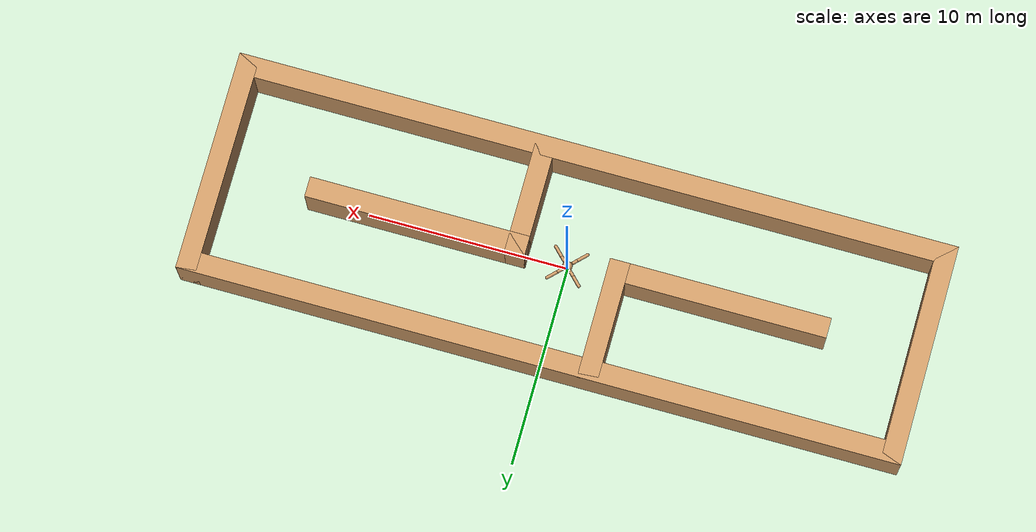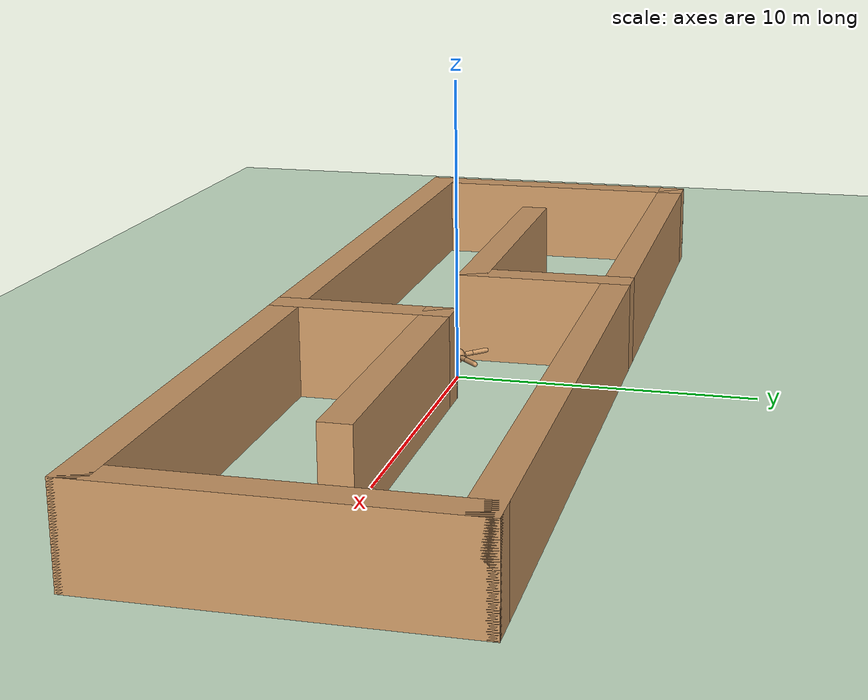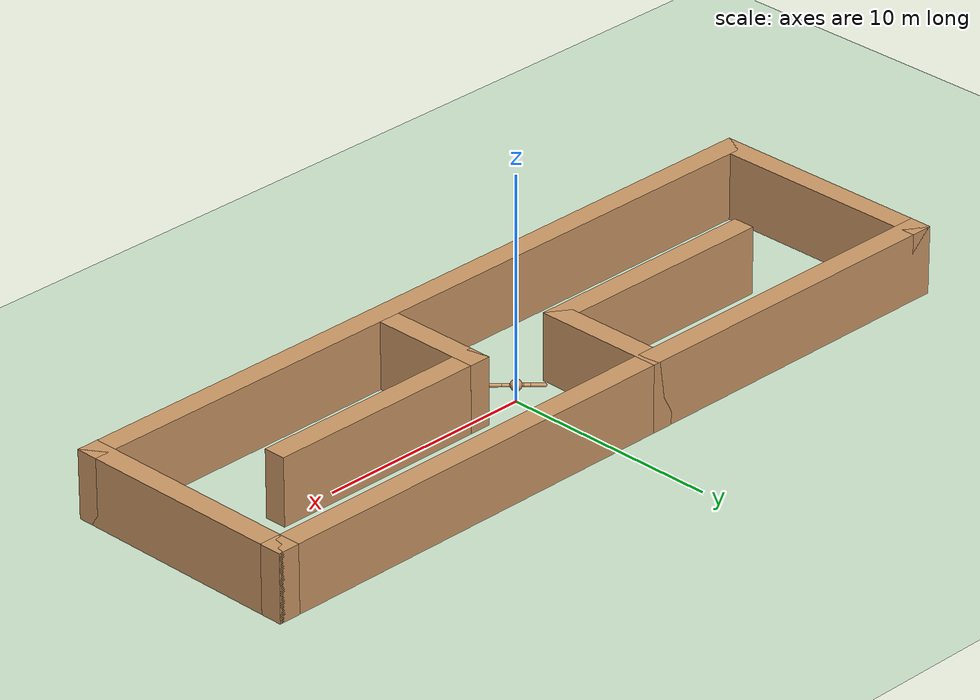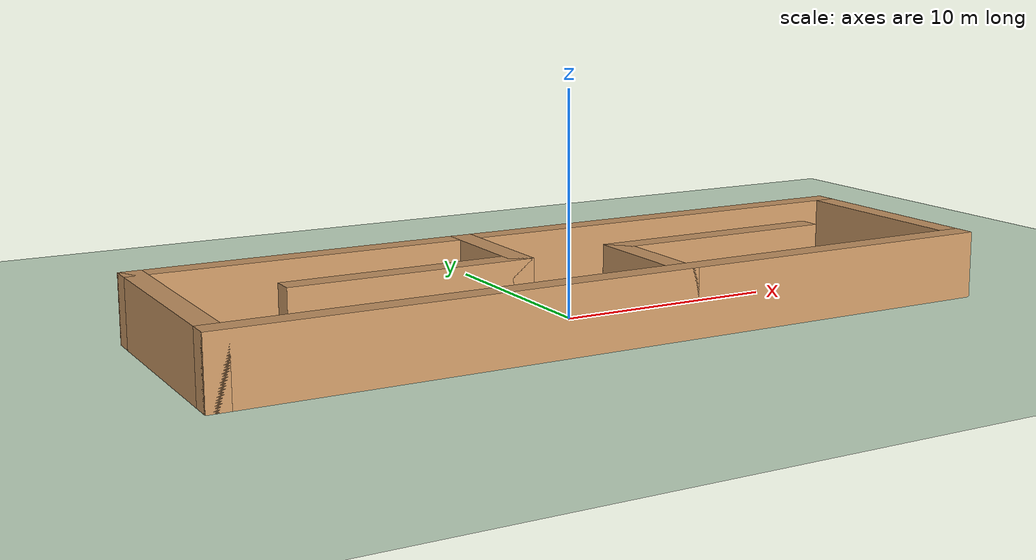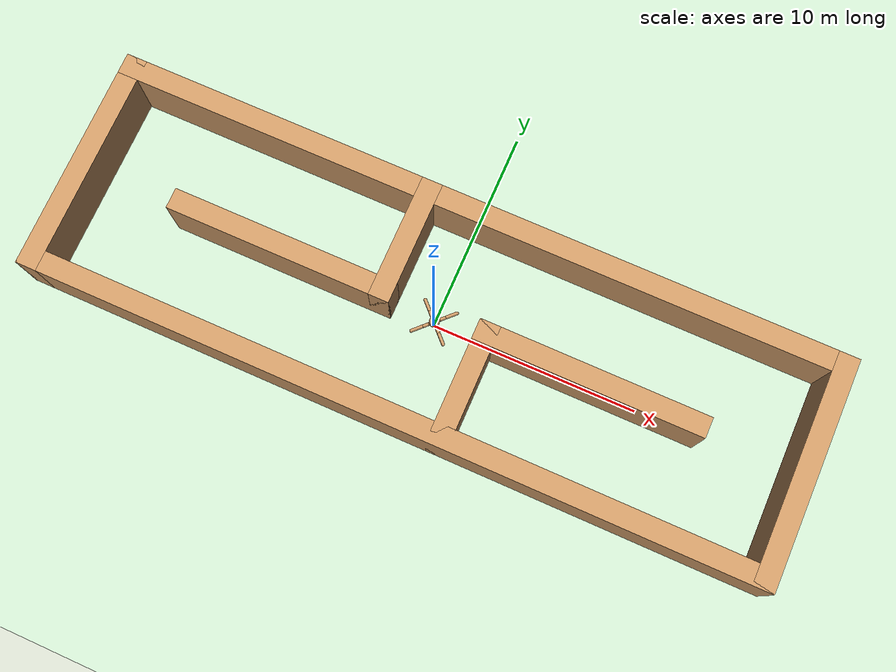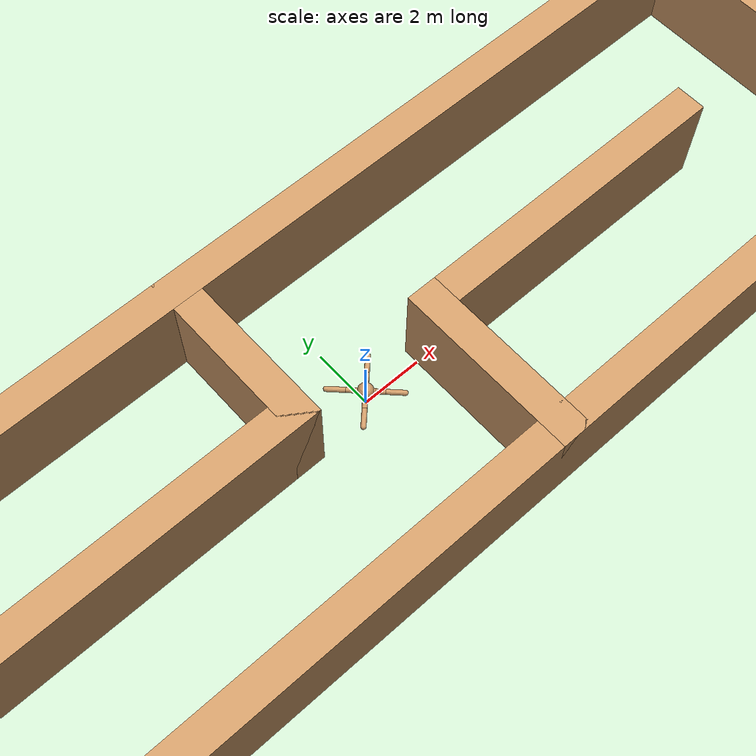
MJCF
<!-- Same a gym ant but with gear ratio of 30 and sites -->
<mujoco model="ant">
    <compiler angle="degree" coordinate="local" inertiafromgeom="true"/>
    <option integrator="RK4" timestep="0.01"/>
    <custom>
        <numeric data="0.0 0.0 0.55 1.0 0.0 0.0 0.0 0.0 1.0 0.0 -1.0 0.0 -1.0 0.0 1.0" name="init_qpos"/>
    </custom>
    <default>
        <joint armature="1" damping="1" limited="true"/>
        <geom conaffinity="0" condim="3" density="5.0" friction="1 0.5 0.5" margin="0.01" rgba="0.8 0.6 0.4 1"/>
    </default>
    <asset>
        <texture builtin="gradient" height="100" rgb1="1 1 1" rgb2="0 0 0" type="skybox" width="100"/>
        <texture builtin="flat" height="1278" mark="cross" markrgb="1 1 1" name="texgeom" random="0.01" rgb1="0.8 0.6 0.4" rgb2="0.8 0.6 0.4" type="cube" width="127"/>
        <texture builtin="checker" height="100" name="texplane" rgb1="0 0 0" rgb2="0.8 0.8 0.8" type="2d" width="100"/>
        <material name="MatPlane" reflectance="0.5" shininess="1" specular="1" texrepeat="60 60" texture="texplane"/>
        <material name="geom" texture="texgeom" texuniform="true"/>
    </asset>
    <worldbody>
        <light cutoff="100" diffuse="1 1 1" dir="-0 0 -1.3" directional="true" exponent="1" pos="0 0 1.3" specular=".1 .1 .1"/>
        <geom conaffinity="1" condim="3" material="MatPlane" name="floor" pos="0 0 0" rgba="0.8 0.9 0.8 1" size="40 40 40" type="plane"/>
        <body name="torso" pos="0 0 0.75">
            <geom name="torso_geom" pos="0 0 0" size="0.25" type="sphere"/>
            <joint armature="0" damping="0" limited="false" margin="0.01" name="root" pos="0 0 0" type="free"/>
            <body name="front_left_leg" pos="0 0 0">
                <geom fromto="0.0 0.0 0.0 0.2 0.2 0.0" name="aux_1_geom" size="0.08" type="capsule"/>
                <body name="aux_1" pos="0.2 0.2 0">
                    <joint axis="0 0 1" name="hip_1" pos="0.0 0.0 0.0" range="-30 30" type="hinge"/>
                    <geom fromto="0.0 0.0 0.0 0.2 0.2 0.0" name="left_leg_geom" size="0.08" type="capsule"/>
                    <body pos="0.2 0.2 0">
                        <joint axis="-1 1 0" name="ankle_1" pos="0.0 0.0 0.0" range="30 70" type="hinge"/>
                        <geom fromto="0.0 0.0 0.0 0.4 0.4 0.0" name="left_ankle_geom" size="0.08" type="capsule"/>
                    </body>
                </body>
            </body>
            <body name="front_right_leg" pos="0 0 0">
                <geom fromto="0.0 0.0 0.0 -0.2 0.2 0.0" name="aux_2_geom" size="0.08" type="capsule"/>
                <body name="aux_2" pos="-0.2 0.2 0">
                    <joint axis="0 0 1" name="hip_2" pos="0.0 0.0 0.0" range="-30 30" type="hinge"/>
                    <geom fromto="0.0 0.0 0.0 -0.2 0.2 0.0" name="right_leg_geom" size="0.08" type="capsule"/>
                    <body pos="-0.2 0.2 0">
                        <joint axis="1 1 0" name="ankle_2" pos="0.0 0.0 0.0" range="-70 -30" type="hinge"/>
                        <geom fromto="0.0 0.0 0.0 -0.4 0.4 0.0" name="right_ankle_geom" size="0.08" type="capsule"/>
                    </body>
                </body>
            </body>
            <body name="back_leg" pos="0 0 0">
                <geom fromto="0.0 0.0 0.0 -0.2 -0.2 0.0" name="aux_3_geom" size="0.08" type="capsule"/>
                <body name="aux_3" pos="-0.2 -0.2 0">
                    <joint axis="0 0 1" name="hip_3" pos="0.0 0.0 0.0" range="-30 30" type="hinge"/>
                    <geom fromto="0.0 0.0 0.0 -0.2 -0.2 0.0" name="back_leg_geom" size="0.08" type="capsule"/>
                    <body pos="-0.2 -0.2 0">
                        <joint axis="-1 1 0" name="ankle_3" pos="0.0 0.0 0.0" range="-70 -30" type="hinge"/>
                        <geom fromto="0.0 0.0 0.0 -0.4 -0.4 0.0" name="third_ankle_geom" size="0.08" type="capsule"/>
                    </body>
                </body>
            </body>
            <body name="right_back_leg" pos="0 0 0">
                <geom fromto="0.0 0.0 0.0 0.2 -0.2 0.0" name="aux_4_geom" size="0.08" type="capsule"/>
                <body name="aux_4" pos="0.2 -0.2 0">
                    <joint axis="0 0 1" name="hip_4" pos="0.0 0.0 0.0" range="-30 30" type="hinge"/>
                    <geom fromto="0.0 0.0 0.0 0.2 -0.2 0.0" name="rightback_leg_geom" size="0.08" type="capsule"/>
                    <body pos="0.2 -0.2 0">
                        <joint axis="1 1 0" name="ankle_4" pos="0.0 0.0 0.0" range="30 70" type="hinge"/>
                        <geom fromto="0.0 0.0 0.0 0.4 -0.4 0.0" name="fourth_ankle_geom" size="0.08" type="capsule"/>
                    </body>
                </body>
            </body>
        </body>

<body mocap="true" pos="0.00 -5.00 1" euler="0 0 0.00">
        <geom type="box" size="18.0 0.5 2" group="1" condim="3" conaffinity="1"/>
</body>
<body mocap="true" pos="0.00 5.00 1" euler="0 0 0.00">
        <geom type="box" size="18.0 0.5 2" group="1" condim="3" conaffinity="1"/>
</body>
<body mocap="true" pos="17.50 0.00 1" euler="0 0 90.00">
        <geom type="box" size="5.5 0.5 2" group="1" condim="3" conaffinity="1"/>
</body>
<body mocap="true" pos="-17.50 0.00 1" euler="0 0 90.00">
        <geom type="box" size="5.5 0.5 2" group="1" condim="3" conaffinity="1"/>
</body>
<body mocap="true" pos="-2.50 2.50 1" euler="0 0 90.00">
        <geom type="box" size="3.0 0.5 2" group="1" condim="3" conaffinity="1"/>
</body>
<body mocap="true" pos="2.50 -2.50 1" euler="0 0 90.00">
        <geom type="box" size="3.0 0.5 2" group="1" condim="3" conaffinity="1"/>
</body>
<body mocap="true" pos="-7.50 0.00 1" euler="0 0 0.00">
        <geom type="box" size="5.5 0.5 2" group="1" condim="3" conaffinity="1"/>
</body>
<body mocap="true" pos="7.50 0.00 1" euler="0 0 0.00">
        <geom type="box" size="5.5 0.5 2" group="1" condim="3" conaffinity="1"/>
</body>

    </worldbody>
    <actuator>
        <motor ctrllimited="true" ctrlrange="-1.0 1.0" joint="hip_4" gear="30"/>
        <motor ctrllimited="true" ctrlrange="-1.0 1.0" joint="ankle_4" gear="30"/>
        <motor ctrllimited="true" ctrlrange="-1.0 1.0" joint="hip_1" gear="30"/>
        <motor ctrllimited="true" ctrlrange="-1.0 1.0" joint="ankle_1" gear="30"/>
        <motor ctrllimited="true" ctrlrange="-1.0 1.0" joint="hip_2" gear="30"/>
        <motor ctrllimited="true" ctrlrange="-1.0 1.0" joint="ankle_2" gear="30"/>
        <motor ctrllimited="true" ctrlrange="-1.0 1.0" joint="hip_3" gear="30"/>
        <motor ctrllimited="true" ctrlrange="-1.0 1.0" joint="ankle_3" gear="30"/>
    </actuator>
</mujoco>
